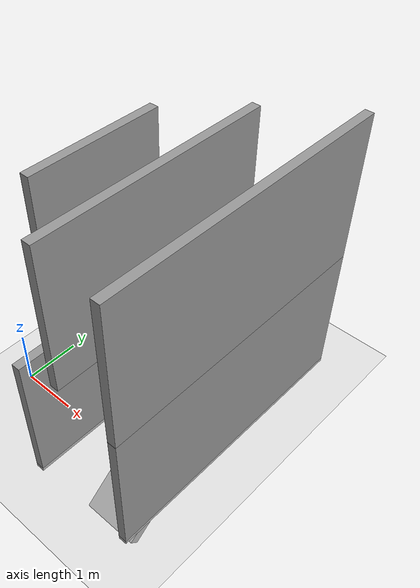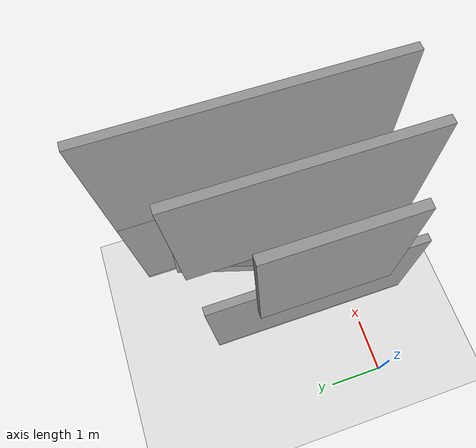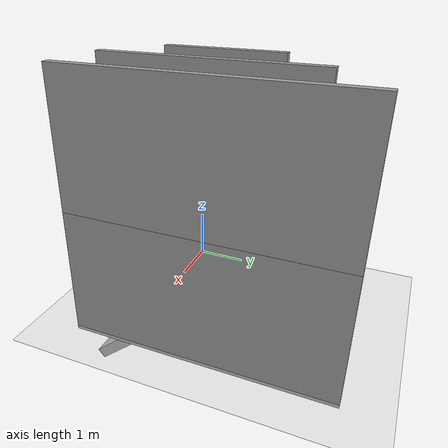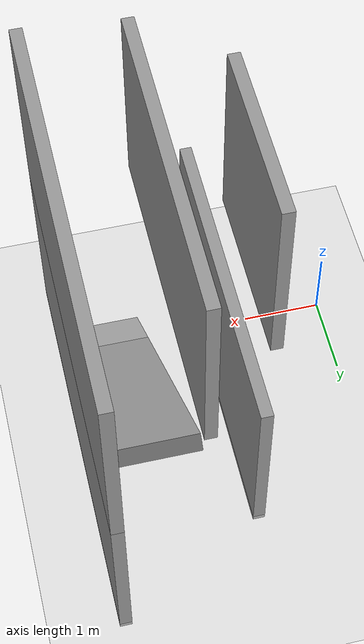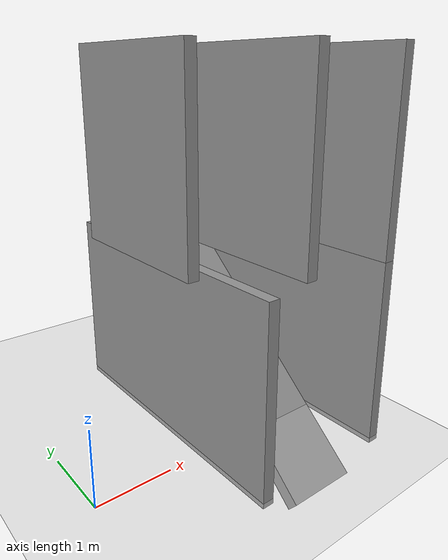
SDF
<sdf version="1.7">
 <world name="default">
  <model name="ground_plane">
   <static>1</static>
   <link name="link">
    <collision name="collision">
     <geometry><plane><normal>0 0 1</normal><size>100 100</size></plane></geometry>
     <surface>
      <contact><collide_bitmask>65535</collide_bitmask></contact>
      <friction><ode><mu>100</mu><mu2>50</mu2></ode></friction>
     </surface>
    </collision>
    <visual name="visual">
     <cast_shadows>0</cast_shadows>
     <geometry><plane><normal>0 0 1</normal><size>100 100</size></plane></geometry>
     <material>
      <script><uri>file://media/materials/scripts/gazebo.material</uri><name>Gazebo/Grey</name></script>
     </material>
    </visual>
   </link>
  </model>
  <model name="test2">
   <pose>0.709104 2.22387 -0.073744 0 -0 0</pose>
   <link name="Wall_38">
    <collision name="Wall_38_Collision">
     <geometry><box><size>5 0.15 2.5</size></box></geometry>
     <pose>0 0 1.25 0 -0 0</pose>
    </collision>
    <visual name="Wall_38_Visual">
     <pose>0 0 1.25 0 -0 0</pose>
     <geometry><box><size>5 0.15 2.5</size></box></geometry>
     <material>
      <script><uri>file://media/materials/scripts/gazebo.material</uri><name>Gazebo/Grey</name></script>
      <ambient>1 1 1 1</ambient>
     </material>
     <meta><layer>0</layer></meta>
    </visual>
    <pose>2.76211 -0.828418 0 0 -0 1.5708</pose>
   </link>
   <link name="Wall_48">
    <collision name="Wall_48_Collision">
     <geometry><box><size>4 0.15 2.5</size></box></geometry>
     <pose>0 0 1.25 0 -0 0</pose>
    </collision>
    <visual name="Wall_48_Visual">
     <pose>0 0 1.25 0 -0 0</pose>
     <geometry><box><size>4 0.15 2.5</size></box></geometry>
     <material>
      <script><uri>file://media/materials/scripts/gazebo.material</uri><name>Gazebo/Grey</name></script>
      <ambient>1 1 1 1</ambient>
     </material>
     <meta><layer>0</layer></meta>
    </visual>
    <pose>0.859691 -1.33602 0 0 -0 -1.5708</pose>
   </link>
   <link name="Wall_52">
    <collision name="Wall_52_Collision">
     <geometry><box><size>5 0.15 2.5</size></box></geometry>
     <pose>0 0 1.25 0 -0 0</pose>
    </collision>
    <visual name="Wall_52_Visual">
     <pose>0 0 1.25 0 -0 0</pose>
     <geometry><box><size>5 0.15 2.5</size></box></geometry>
     <material>
      <script><uri>file://media/materials/scripts/gazebo.material</uri><name>Gazebo/Grey</name></script>
      <ambient>1 1 1 1</ambient>
     </material>
     <meta><layer>1</layer></meta>
    </visual>
    <pose>2.76211 -0.828418 2.5 0 -0 1.5708</pose>
   </link>
   <link name="Wall_61">
    <collision name="Wall_61_Collision">
     <geometry><box><size>4 0.15 2.5</size></box></geometry>
     <pose>0 0 1.25 0 -0 0</pose>
    </collision>
    <visual name="Wall_61_Visual">
     <pose>0 0 1.25 0 -0 0</pose>
     <geometry><box><size>4 0.15 2.5</size></box></geometry>
     <material>
      <script><uri>file://media/materials/scripts/gazebo.material</uri><name>Gazebo/Grey</name></script>
      <ambient>1 1 1 1</ambient>
     </material>
     <meta><layer>1</layer></meta>
    </visual>
    <pose>1.53412 -1.21497 2.5 0 -0 -1.5708</pose>
   </link>
   <link name="Wall_67">
    <collision name="Wall_67_Collision">
     <geometry><box><size>2.25 0.15 2.5</size></box></geometry>
     <pose>0 0 1.25 0 -0 0</pose>
    </collision>
    <visual name="Wall_67_Visual">
     <pose>0 0 1.25 0 -0 0</pose>
     <geometry><box><size>2.25 0.15 2.5</size></box></geometry>
     <material>
      <script><uri>file://media/materials/scripts/gazebo.material</uri><name>Gazebo/Grey</name></script>
      <ambient>1 1 1 1</ambient>
     </material>
     <meta><layer>1</layer></meta>
    </visual>
    <pose>0.527602 -1.29979 2.5 0 -0 -1.5708</pose>
   </link>
   <static>1</static>
  </model>
  <model name="slope_base_clone">
   <link name="link">
    <inertial>
     <mass>1</mass>
     <inertia>
      <ixx>0.166667</ixx>
      <ixy>0</ixy>
      <ixz>0</ixz>
      <iyy>0.166667</iyy>
      <iyz>0</iyz>
      <izz>0.166667</izz>
     </inertia>
    </inertial>
    <visual name="visual">
     <geometry><box><size>1 5 0.2</size></box></geometry>
     <material>
      <script><name>Gazebo/Grey</name><uri>file://media/materials/scripts/gazebo.material</uri></script>
      <shader type="pixel"><normal_map>__default__</normal_map></shader>
      <ambient>0.3 0.3 0.3 1</ambient>
      <diffuse>0.7 0.7 0.7 1</diffuse>
      <specular>0.01 0.01 0.01 1</specular>
      <emissive>0 0 0 1</emissive>
     </material>
    </visual>
    <collision name="collision">
     <geometry><box><size>1 5 0.2</size></box></geometry>
     <surface>
      <friction>
       <ode><mu>1</mu><mu2>1</mu2><fdir1>0 0 0</fdir1><slip1>0</slip1><slip2>0</slip2></ode>
       <torsional>
        <coefficient>1</coefficient>
        <patch_radius>0</patch_radius>
        <surface_radius>0</surface_radius>
        <use_patch_radius>1</use_patch_radius>
        <ode><slip>0</slip></ode>
       </torsional>
      </friction>
      <bounce><restitution_coefficient>0</restitution_coefficient><threshold>1e+06</threshold></bounce>
      <contact>
       <collide_without_contact>0</collide_without_contact>
       <collide_without_contact_bitmask>1</collide_without_contact_bitmask>
       <collide_bitmask>1</collide_bitmask>
       <ode>
        <soft_cfm>0</soft_cfm>
        <soft_erp>0.2</soft_erp>
        <kp>1e+13</kp>
        <kd>1</kd>
        <max_vel>0.01</max_vel>
        <min_depth>0</min_depth>
       </ode>
       <bullet>
        <split_impulse>1</split_impulse>
        <split_impulse_penetration_threshold>-0.01</split_impulse_penetration_threshold>
        <soft_cfm>0</soft_cfm>
        <soft_erp>0.2</soft_erp>
        <kp>1e+13</kp>
        <kd>1</kd>
       </bullet>
      </contact>
     </surface>
    </collision>
   </link>
   <static>0</static>
   <pose>2.84884 1.13388 0.847228 2.43929 -0 3.1388</pose>
  </model>
 </world>
</sdf>
